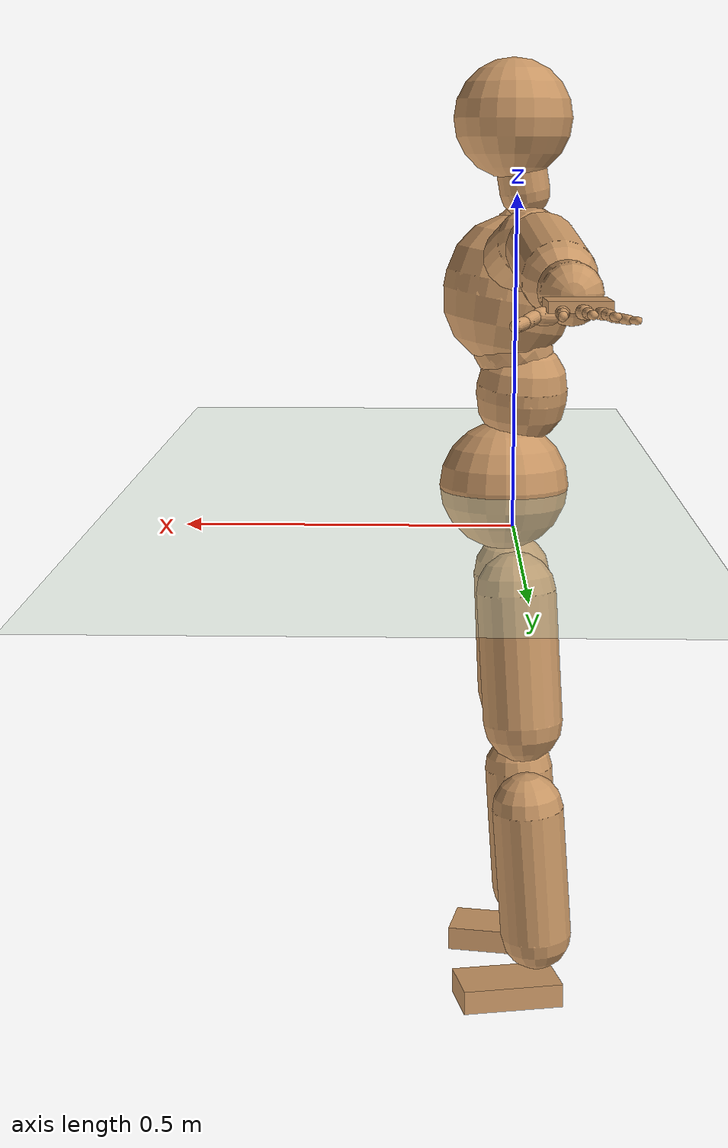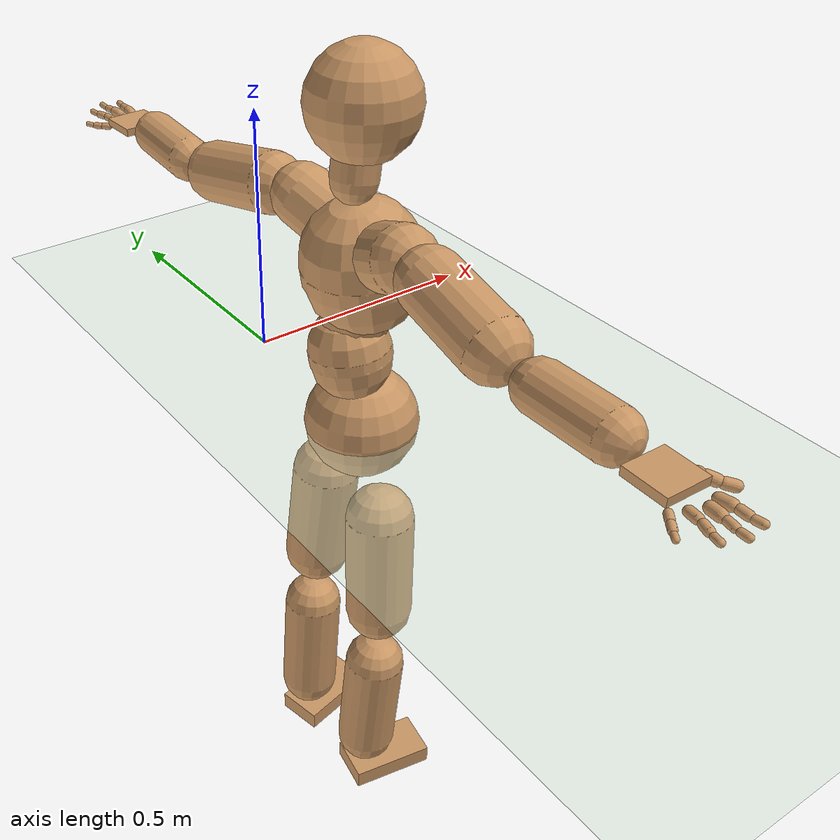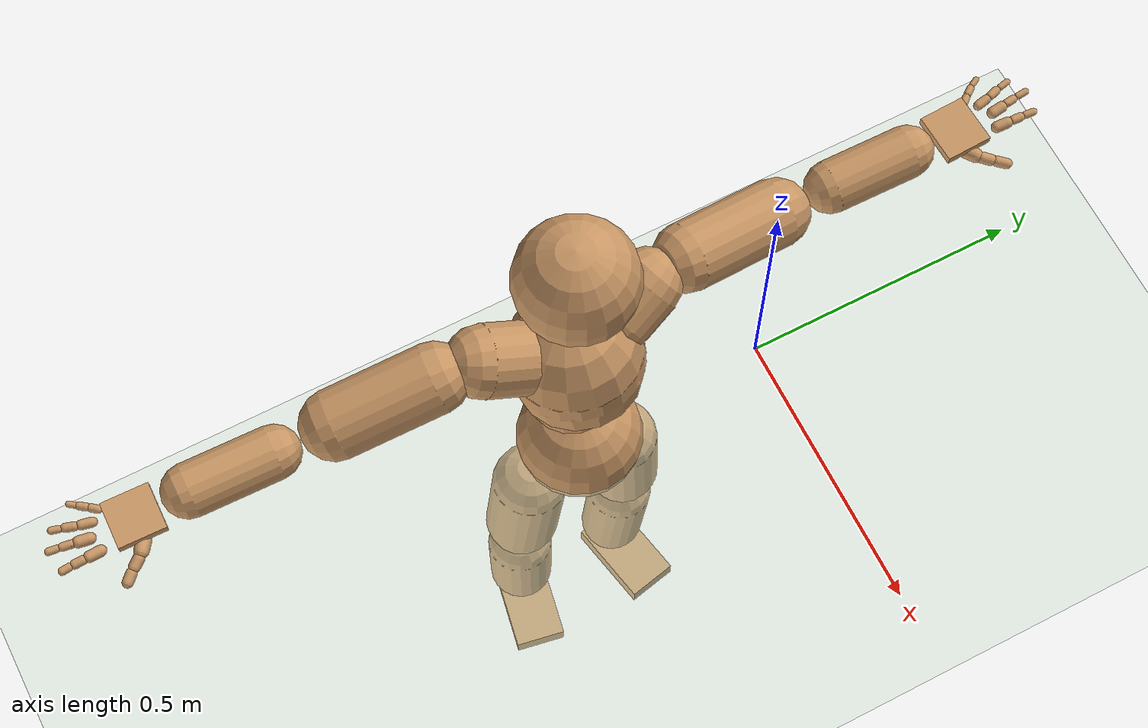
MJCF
<mujoco model="humanoid">
  <compiler coordinate="local" angle="radian"/>
  <default>
    <joint damping="0.0" armature="0.01" stiffness="0.0" limited="true"/>
    <geom conaffinity="1" condim="3" contype="7" margin="0.001" rgba="0.8 0.6 .4 1"/>
  </default>
  <asset>
    <texture type="skybox" builtin="gradient" rgb1=".4 .5 .6" rgb2="0 0 0" width="100" height="100"/>
    <texture builtin="flat" height="1278" mark="cross" markrgb="1 1 1" name="texgeom" random="0.01" rgb1="0.8 0.6 0.4" rgb2="0.8 0.6 0.4" type="cube" width="127"/>
    <texture builtin="checker" height="100" name="texplane" rgb1="0 0 0" rgb2="0.8 0.8 0.8" type="2d" width="100"/>
    <material name="MatPlane" reflectance="0.5" shininess="1" specular="1" texrepeat="60 60" texture="texplane"/>
    <material name="geom" texture="texgeom" texuniform="true"/>
  </asset>
  <worldbody>
    <light cutoff="100" diffuse="1 1 1" dir="-0 0 -1.3" directional="true" exponent="1" pos="0 0 1.3" specular=".1 .1 .1"/>
    <geom conaffinity="1" condim="3" name="floor" pos="0 0 0" rgba="0.8 0.9 0.8 1" size="100 100 .2" type="plane" material="MatPlane"/>
    <body name="Pelvis" pos="0.0008 -0.3431 0.0042">
      <freejoint name="Pelvis"/>
      <geom type="sphere" contype="1" conaffinity="1" density="500" size="0.1096" pos="0.0000 0.0000 0.0000" name="Pelvis"/>
      <body name="L_Hip" pos="-0.0148 0.0846 -0.091">
        <joint name="L_Hip_x" type="hinge" pos="0 0 0" axis="1 0 0" stiffness="800" damping="80" armature="0.02" range="-180.0000 180.0000"/>
        <joint name="L_Hip_y" type="hinge" pos="0 0 0" axis="0 1 0" stiffness="800" damping="80" armature="0.02" range="-180.0000 180.0000"/>
        <joint name="L_Hip_z" type="hinge" pos="0 0 0" axis="0 0 1" stiffness="800" damping="80" armature="0.02" range="-180.0000 180.0000"/>
        <geom type="capsule" contype="1" conaffinity="1" density="500" fromto="-0.0047 0.0051 -0.0747 -0.0189 0.0205 -0.2987" size="0.0671" name="L_Hip"/>
        <body name="L_Knee" pos="-0.0236 0.0257 -0.3734">
          <joint name="L_Knee_x" type="hinge" pos="0 0 0" axis="1 0 0" stiffness="800" damping="80" armature="0.02" range="-180.0000 180.0000"/>
          <joint name="L_Knee_y" type="hinge" pos="0 0 0" axis="0 1 0" stiffness="800" damping="80" armature="0.02" range="-180.0000 180.0000"/>
          <joint name="L_Knee_z" type="hinge" pos="0 0 0" axis="0 0 1" stiffness="800" damping="80" armature="0.02" range="-180.0000 180.0000"/>
          <geom type="capsule" contype="1" conaffinity="1" density="500" fromto="-0.0060 -0.0021 -0.0771 -0.0239 -0.0085 -0.3083" size="0.0609" name="L_Knee"/>
          <body name="L_Ankle" pos="-0.0299 -0.0107 -0.3854">
            <joint name="L_Ankle_x" type="hinge" pos="0 0 0" axis="1 0 0" stiffness="800" damping="80" armature="0.02" range="-180.0000 180.0000"/>
            <joint name="L_Ankle_y" type="hinge" pos="0 0 0" axis="0 1 0" stiffness="800" damping="80" armature="0.02" range="-180.0000 180.0000"/>
            <joint name="L_Ankle_z" type="hinge" pos="0 0 0" axis="0 0 1" stiffness="800" damping="80" armature="0.02" range="-180.0000 180.0000"/>
            <geom type="box" contype="1" conaffinity="1" density="500" pos="0.0549 0.0115 -0.0207" size="0.0871 0.0489 0.0206" quat="0.9947 0.0000 0.0000 0.1032" name="L_Ankle"/>
            <body name="L_Toe" pos="0.1098 0.023 -0.0413">
              <joint name="L_Toe_x" type="hinge" pos="0 0 0" axis="1 0 0" stiffness="500" damping="50" armature="0.02" range="-180.0000 180.0000"/>
              <joint name="L_Toe_y" type="hinge" pos="0 0 0" axis="0 1 0" stiffness="500" damping="50" armature="0.02" range="-180.0000 180.0000"/>
              <joint name="L_Toe_z" type="hinge" pos="0 0 0" axis="0 0 1" stiffness="500" damping="50" armature="0.02" range="-180.0000 180.0000"/>
              <geom type="box" contype="1" conaffinity="1" density="500" pos="0.0000 0.0000 0.0209" size="0.0009 0.0024 0.001" quat="0.9939 0.0000 0.0000 0.1099" name="L_Toe"/>
            </body>
          </body>
        </body>
      </body>
      <body name="R_Hip" pos="-0.0157 -0.0842 -0.0974">
        <joint name="R_Hip_x" type="hinge" pos="0 0 0" axis="1 0 0" stiffness="800" damping="80" armature="0.02" range="-180.0000 180.0000"/>
        <joint name="R_Hip_y" type="hinge" pos="0 0 0" axis="0 1 0" stiffness="800" damping="80" armature="0.02" range="-180.0000 180.0000"/>
        <joint name="R_Hip_z" type="hinge" pos="0 0 0" axis="0 0 1" stiffness="800" damping="80" armature="0.02" range="-180.0000 180.0000"/>
        <geom type="capsule" contype="1" conaffinity="1" density="500" fromto="-0.0035 -0.0060 -0.0738 -0.0140 -0.0241 -0.2954" size="0.0669" name="R_Hip"/>
        <body name="R_Knee" pos="-0.0175 -0.0301 -0.3692">
          <joint name="R_Knee_x" type="hinge" pos="0 0 0" axis="1 0 0" stiffness="800" damping="80" armature="0.02" range="-180.0000 180.0000"/>
          <joint name="R_Knee_y" type="hinge" pos="0 0 0" axis="0 1 0" stiffness="800" damping="80" armature="0.02" range="-180.0000 180.0000"/>
          <joint name="R_Knee_z" type="hinge" pos="0 0 0" axis="0 0 1" stiffness="800" damping="80" armature="0.02" range="-180.0000 180.0000"/>
          <geom type="capsule" contype="1" conaffinity="1" density="500" fromto="-0.0053 0.0012 -0.0753 -0.0212 0.0047 -0.3012" size="0.0609" name="R_Knee"/>
          <body name="R_Ankle" pos="-0.0265 0.0059 -0.3765">
            <joint name="R_Ankle_x" type="hinge" pos="0 0 0" axis="1 0 0" stiffness="800" damping="80" armature="0.02" range="-180.0000 180.0000"/>
            <joint name="R_Ankle_y" type="hinge" pos="0 0 0" axis="0 1 0" stiffness="800" damping="80" armature="0.02" range="-180.0000 180.0000"/>
            <joint name="R_Ankle_z" type="hinge" pos="0 0 0" axis="0 0 1" stiffness="800" damping="80" armature="0.02" range="-180.0000 180.0000"/>
            <geom type="box" contype="1" conaffinity="1" density="500" pos="0.0518 -0.0094 -0.0223" size="0.0871 0.0489 0.0206" quat="0.9960 0.0000 0.0000 -0.0895" name="R_Ankle"/>
            <body name="R_Toe" pos="0.1036 -0.0188 -0.0446">
              <joint name="R_Toe_x" type="hinge" pos="0 0 0" axis="1 0 0" stiffness="500" damping="50" armature="0.02" range="-180.0000 180.0000"/>
              <joint name="R_Toe_y" type="hinge" pos="0 0 0" axis="0 1 0" stiffness="500" damping="50" armature="0.02" range="-180.0000 180.0000"/>
              <joint name="R_Toe_z" type="hinge" pos="0 0 0" axis="0 0 1" stiffness="500" damping="50" armature="0.02" range="-180.0000 180.0000"/>
              <geom type="box" contype="1" conaffinity="1" density="500" pos="0.0000 0.0000 0.0225" size="0.0009 0.0024 0.001" quat="0.9969 0.0000 0.0000 -0.0787" name="R_Toe"/>
            </body>
          </body>
        </body>
      </body>
      <body name="Torso" pos="-0.0245 -0.0064 0.1062">
        <joint name="Torso_x" type="hinge" pos="0 0 0" axis="1 0 0" stiffness="1000" damping="100" armature="0.02" range="-180.0000 180.0000"/>
        <joint name="Torso_y" type="hinge" pos="0 0 0" axis="0 1 0" stiffness="1000" damping="100" armature="0.02" range="-180.0000 180.0000"/>
        <joint name="Torso_z" type="hinge" pos="0 0 0" axis="0 0 1" stiffness="1000" damping="100" armature="0.02" range="-180.0000 180.0000"/>
        <geom type="capsule" contype="1" conaffinity="1" density="500" fromto="-0.0043 0.0083 0.0640 -0.0029 0.0056 0.0427" size="0.0769" name="Torso"/>
        <body name="Spine" pos="-0.0072 0.0139 0.1067">
          <joint name="Spine_x" type="hinge" pos="0 0 0" axis="1 0 0" stiffness="1000" damping="100" armature="0.02" range="-180.0000 180.0000"/>
          <joint name="Spine_y" type="hinge" pos="0 0 0" axis="0 1 0" stiffness="1000" damping="100" armature="0.02" range="-180.0000 180.0000"/>
          <joint name="Spine_z" type="hinge" pos="0 0 0" axis="0 0 1" stiffness="1000" damping="100" armature="0.02" range="-180.0000 180.0000"/>
          <geom type="capsule" contype="1" conaffinity="1" density="500" fromto="0.0243 -0.0048 0.0265 0.0162 -0.0032 0.0177" size="0.0642" name="Spine"/>
          <body name="Chest" pos="0.0405 -0.008 0.0442">
            <joint name="Chest_x" type="hinge" pos="0 0 0" axis="1 0 0" stiffness="1000" damping="100" armature="0.02" range="-180.0000 180.0000"/>
            <joint name="Chest_y" type="hinge" pos="0 0 0" axis="0 1 0" stiffness="1000" damping="100" armature="0.02" range="-180.0000 180.0000"/>
            <joint name="Chest_z" type="hinge" pos="0 0 0" axis="0 0 1" stiffness="1000" damping="100" armature="0.02" range="-180.0000 180.0000"/>
            <geom type="capsule" contype="1" conaffinity="1" density="500" fromto="-0.0168 -0.0020 0.0879 -0.0112 -0.0013 0.0586" size="0.1102" name="Chest"/>
            <body name="Neck" pos="-0.0427 -0.0067 0.2043">
              <joint name="Neck_x" type="hinge" pos="0 0 0" axis="1 0 0" stiffness="500" damping="50" armature="0.02" range="-180.0000 180.0000"/>
              <joint name="Neck_y" type="hinge" pos="0 0 0" axis="0 1 0" stiffness="500" damping="50" armature="0.02" range="-180.0000 180.0000"/>
              <joint name="Neck_z" type="hinge" pos="0 0 0" axis="0 0 1" stiffness="500" damping="50" armature="0.02" range="-180.0000 180.0000"/>
              <geom type="capsule" contype="1" conaffinity="1" density="500" fromto="0.0054 0.0018 0.0298 0.0214 0.0073 0.1192" size="0.0418" name="Neck"/>
              <body name="Head" pos="0.0268 0.0091 0.1489">
                <joint name="Head_x" type="hinge" pos="0 0 0" axis="1 0 0" stiffness="500" damping="50" armature="0.02" range="-180.0000 180.0000"/>
                <joint name="Head_y" type="hinge" pos="0 0 0" axis="0 1 0" stiffness="500" damping="50" armature="0.02" range="-180.0000 180.0000"/>
                <joint name="Head_z" type="hinge" pos="0 0 0" axis="0 0 1" stiffness="500" damping="50" armature="0.02" range="-180.0000 180.0000"/>
                <geom type="sphere" contype="1" conaffinity="1" density="500" size="0.0981" pos="0.0000 0.0000 0.0000" name="Head"/>
              </body>
            </body>
            <body name="L_Thorax" pos="-0.0167 0.0572 0.1199">
              <joint name="L_Thorax_x" type="hinge" pos="0 0 0" axis="1 0 0" stiffness="500" damping="50" armature="0.02" range="-180.0000 180.0000"/>
              <joint name="L_Thorax_y" type="hinge" pos="0 0 0" axis="0 1 0" stiffness="500" damping="50" armature="0.02" range="-180.0000 180.0000"/>
              <joint name="L_Thorax_z" type="hinge" pos="0 0 0" axis="0 0 1" stiffness="500" damping="50" armature="0.02" range="-180.0000 180.0000"/>
              <geom type="capsule" contype="1" conaffinity="1" density="500" fromto="-0.0064 0.0199 0.0090 -0.0256 0.0797 0.0358" size="0.0582" name="L_Thorax"/>
              <body name="L_Shoulder" pos="-0.032 0.0997 0.0448">
                <joint name="L_Shoulder_x" type="hinge" pos="0 0 0" axis="1 0 0" stiffness="500" damping="50" armature="0.02" range="-180.0000 180.0000"/>
                <joint name="L_Shoulder_y" type="hinge" pos="0 0 0" axis="0 1 0" stiffness="500" damping="50" armature="0.02" range="-180.0000 180.0000"/>
                <joint name="L_Shoulder_z" type="hinge" pos="0 0 0" axis="0 0 1" stiffness="500" damping="50" armature="0.02" range="-180.0000 180.0000"/>
                <geom type="capsule" contype="1" conaffinity="1" density="500" fromto="-0.0057 0.0568 -0.0115 -0.0229 0.2273 -0.0459" size="0.0572" name="L_Shoulder"/>
                <body name="L_Elbow" pos="-0.0286 0.2841 -0.0574">
                  <joint name="L_Elbow_x" type="hinge" pos="0 0 0" axis="1 0 0" stiffness="500" damping="50" armature="0.02" range="-720.0000 720.0000"/>
                  <joint name="L_Elbow_y" type="hinge" pos="0 0 0" axis="0 1 0" stiffness="500" damping="50" armature="0.02" range="-720.0000 720.0000"/>
                  <joint name="L_Elbow_z" type="hinge" pos="0 0 0" axis="0 0 1" stiffness="500" damping="50" armature="0.02" range="-720.0000 720.0000"/>
                  <geom type="capsule" contype="1" conaffinity="1" density="500" fromto="0.0013 0.0465 0.0018 0.0051 0.1861 0.0071" size="0.0435" name="L_Elbow"/>
                  <body name="L_Wrist" pos="0.0063 0.2327 0.0089">
                    <joint name="L_Wrist_x" type="hinge" pos="0 0 0" axis="1 0 0" stiffness="300" damping="30" armature="0.02" range="-180.0000 180.0000"/>
                    <joint name="L_Wrist_y" type="hinge" pos="0 0 0" axis="0 1 0" stiffness="300" damping="30" armature="0.02" range="-180.0000 180.0000"/>
                    <joint name="L_Wrist_z" type="hinge" pos="0 0 0" axis="0 0 1" stiffness="300" damping="30" armature="0.02" range="-180.0000 180.0000"/>
                    <geom type="box" contype="1" conaffinity="1" density="500" pos="-0.0019 0.0442 -0.0086" size="0.0394 0.0424 0.0076" quat="0.7225 0.0000 0.0000 -0.6914" name="L_Wrist"/>
                    <body name="L_Index1" pos="0.0212 0.1037 -0.0148">
                      <joint name="L_Index1_x" type="hinge" pos="0 0 0" axis="1 0 0" stiffness="100" damping="10" armature="0.02" range="-180.0000 180.0000"/>
                      <joint name="L_Index1_y" type="hinge" pos="0 0 0" axis="0 1 0" stiffness="100" damping="10" armature="0.02" range="-180.0000 180.0000"/>
                      <joint name="L_Index1_z" type="hinge" pos="0 0 0" axis="0 0 1" stiffness="100" damping="10" armature="0.02" range="-180.0000 180.0000"/>
                      <geom type="capsule" contype="1" conaffinity="1" density="500" fromto="0.0005 0.0063 0.0006 0.0021 0.0252 0.0025" size="0.0093" name="L_Index1"/>
                      <body name="L_Index2" pos="0.0026 0.0315 0.0031">
                        <joint name="L_Index2_x" type="hinge" pos="0 0 0" axis="1 0 0" stiffness="100" damping="10" armature="0.02" range="-180.0000 180.0000"/>
                        <joint name="L_Index2_y" type="hinge" pos="0 0 0" axis="0 1 0" stiffness="100" damping="10" armature="0.02" range="-180.0000 180.0000"/>
                        <joint name="L_Index2_z" type="hinge" pos="0 0 0" axis="0 0 1" stiffness="100" damping="10" armature="0.02" range="-180.0000 180.0000"/>
                        <geom type="capsule" contype="1" conaffinity="1" density="500" fromto="0.0000 0.0044 -0.0003 0.0002 0.0178 -0.0010" size="0.0076" name="L_Index2"/>
                        <body name="L_Index3" pos="0.0002 0.0222 -0.0013">
                          <joint name="L_Index3_x" type="hinge" pos="0 0 0" axis="1 0 0" stiffness="100" damping="10" armature="0.02" range="-180.0000 180.0000"/>
                          <joint name="L_Index3_y" type="hinge" pos="0 0 0" axis="0 1 0" stiffness="100" damping="10" armature="0.02" range="-180.0000 180.0000"/>
                          <joint name="L_Index3_z" type="hinge" pos="0 0 0" axis="0 0 1" stiffness="100" damping="10" armature="0.02" range="-180.0000 180.0000"/>
                          <geom type="capsule" contype="1" conaffinity="1" density="500" fromto="0.0004 0.0048 0.0001 0.0018 0.0194 0.0006" size="0.0063" name="L_Index3"/>
                        </body>
                      </body>
                    </body>
                    <body name="L_Middle1" pos="-0.0021 0.1108 -0.0122">
                      <joint name="L_Middle1_x" type="hinge" pos="0 0 0" axis="1 0 0" stiffness="100" damping="10" armature="0.02" range="-180.0000 180.0000"/>
                      <joint name="L_Middle1_y" type="hinge" pos="0 0 0" axis="0 1 0" stiffness="100" damping="10" armature="0.02" range="-180.0000 180.0000"/>
                      <joint name="L_Middle1_z" type="hinge" pos="0 0 0" axis="0 0 1" stiffness="100" damping="10" armature="0.02" range="-180.0000 180.0000"/>
                      <geom type="capsule" contype="1" conaffinity="1" density="500" fromto="-0.0008 0.0060 0.0003 -0.0031 0.0238 0.0013" size="0.0095" name="L_Middle1"/>
                      <body name="L_Middle2" pos="-0.0039 0.0298 0.0017">
                        <joint name="L_Middle2_x" type="hinge" pos="0 0 0" axis="1 0 0" stiffness="100" damping="10" armature="0.02" range="-180.0000 180.0000"/>
                        <joint name="L_Middle2_y" type="hinge" pos="0 0 0" axis="0 1 0" stiffness="100" damping="10" armature="0.02" range="-180.0000 180.0000"/>
                        <joint name="L_Middle2_z" type="hinge" pos="0 0 0" axis="0 0 1" stiffness="100" damping="10" armature="0.02" range="-180.0000 180.0000"/>
                        <geom type="capsule" contype="1" conaffinity="1" density="500" fromto="-0.0008 0.0046 -0.0001 -0.0030 0.0184 -0.0005" size="0.007" name="L_Middle2"/>
                        <body name="L_Middle3" pos="-0.0038 0.023 -0.0007">
                          <joint name="L_Middle3_x" type="hinge" pos="0 0 0" axis="1 0 0" stiffness="100" damping="10" armature="0.02" range="-180.0000 180.0000"/>
                          <joint name="L_Middle3_y" type="hinge" pos="0 0 0" axis="0 1 0" stiffness="100" damping="10" armature="0.02" range="-180.0000 180.0000"/>
                          <joint name="L_Middle3_z" type="hinge" pos="0 0 0" axis="0 0 1" stiffness="100" damping="10" armature="0.02" range="-180.0000 180.0000"/>
                          <geom type="capsule" contype="1" conaffinity="1" density="500" fromto="-0.0004 0.0050 0.0003 -0.0014 0.0200 0.0011" size="0.0059" name="L_Middle3"/>
                        </body>
                      </body>
                    </body>
                    <body name="L_Pinky1" pos="-0.0411 0.0854 -0.0207">
                      <joint name="L_Pinky1_x" type="hinge" pos="0 0 0" axis="1 0 0" stiffness="100" damping="10" armature="0.02" range="-180.0000 180.0000"/>
                      <joint name="L_Pinky1_y" type="hinge" pos="0 0 0" axis="0 1 0" stiffness="100" damping="10" armature="0.02" range="-180.0000 180.0000"/>
                      <joint name="L_Pinky1_z" type="hinge" pos="0 0 0" axis="0 0 1" stiffness="100" damping="10" armature="0.02" range="-180.0000 180.0000"/>
                      <geom type="capsule" contype="1" conaffinity="1" density="500" fromto="-0.0024 0.0030 -0.0001 -0.0096 0.0118 -0.0005" size="0.0067" name="L_Pinky1"/>
                      <body name="L_Pinky2" pos="-0.012 0.0148 -0.0006">
                        <joint name="L_Pinky2_x" type="hinge" pos="0 0 0" axis="1 0 0" stiffness="100" damping="10" armature="0.02" range="-180.0000 180.0000"/>
                        <joint name="L_Pinky2_y" type="hinge" pos="0 0 0" axis="0 1 0" stiffness="100" damping="10" armature="0.02" range="-180.0000 180.0000"/>
                        <joint name="L_Pinky2_z" type="hinge" pos="0 0 0" axis="0 0 1" stiffness="100" damping="10" armature="0.02" range="-180.0000 180.0000"/>
                        <geom type="capsule" contype="1" conaffinity="1" density="500" fromto="-0.0023 0.0030 -0.0002 -0.0092 0.0120 -0.0008" size="0.0065" name="L_Pinky2"/>
                        <body name="L_Pinky3" pos="-0.0115 0.015 -0.0011">
                          <joint name="L_Pinky3_x" type="hinge" pos="0 0 0" axis="1 0 0" stiffness="100" damping="10" armature="0.02" range="-180.0000 180.0000"/>
                          <joint name="L_Pinky3_y" type="hinge" pos="0 0 0" axis="0 1 0" stiffness="100" damping="10" armature="0.02" range="-180.0000 180.0000"/>
                          <joint name="L_Pinky3_z" type="hinge" pos="0 0 0" axis="0 0 1" stiffness="100" damping="10" armature="0.02" range="-180.0000 180.0000"/>
                          <geom type="capsule" contype="1" conaffinity="1" density="500" fromto="-0.0019 0.0034 0.0002 -0.0076 0.0136 0.0008" size="0.0049" name="L_Pinky3"/>
                        </body>
                      </body>
                    </body>
                    <body name="L_Ring1" pos="-0.0253 0.0988 -0.0152">
                      <joint name="L_Ring1_x" type="hinge" pos="0 0 0" axis="1 0 0" stiffness="100" damping="10" armature="0.02" range="-180.0000 180.0000"/>
                      <joint name="L_Ring1_y" type="hinge" pos="0 0 0" axis="0 1 0" stiffness="100" damping="10" armature="0.02" range="-180.0000 180.0000"/>
                      <joint name="L_Ring1_z" type="hinge" pos="0 0 0" axis="0 0 1" stiffness="100" damping="10" armature="0.02" range="-180.0000 180.0000"/>
                      <geom type="capsule" contype="1" conaffinity="1" density="500" fromto="-0.0011 0.0055 0.0004 -0.0043 0.0219 0.0015" size="0.0081" name="L_Ring1"/>
                      <body name="L_Ring2" pos="-0.0054 0.0274 0.0019">
                        <joint name="L_Ring2_x" type="hinge" pos="0 0 0" axis="1 0 0" stiffness="100" damping="10" armature="0.02" range="-180.0000 180.0000"/>
                        <joint name="L_Ring2_y" type="hinge" pos="0 0 0" axis="0 1 0" stiffness="100" damping="10" armature="0.02" range="-180.0000 180.0000"/>
                        <joint name="L_Ring2_z" type="hinge" pos="0 0 0" axis="0 0 1" stiffness="100" damping="10" armature="0.02" range="-180.0000 180.0000"/>
                        <geom type="capsule" contype="1" conaffinity="1" density="500" fromto="-0.0014 0.0045 -0.0002 -0.0057 0.0178 -0.0008" size="0.0074" name="L_Ring2"/>
                        <body name="L_Ring3" pos="-0.0071 0.0223 -0.0011">
                          <joint name="L_Ring3_x" type="hinge" pos="0 0 0" axis="1 0 0" stiffness="100" damping="10" armature="0.02" range="-180.0000 180.0000"/>
                          <joint name="L_Ring3_y" type="hinge" pos="0 0 0" axis="0 1 0" stiffness="100" damping="10" armature="0.02" range="-180.0000 180.0000"/>
                          <joint name="L_Ring3_z" type="hinge" pos="0 0 0" axis="0 0 1" stiffness="100" damping="10" armature="0.02" range="-180.0000 180.0000"/>
                          <geom type="capsule" contype="1" conaffinity="1" density="500" fromto="-0.0010 0.0049 0.0002 -0.0041 0.0194 0.0008" size="0.0056" name="L_Ring3"/>
                        </body>
                      </body>
                    </body>
                    <body name="L_Thumb1" pos="0.0279 0.0431 -0.0233">
                      <joint name="L_Thumb1_x" type="hinge" pos="0 0 0" axis="1 0 0" stiffness="100" damping="10" armature="0.02" range="-180.0000 180.0000"/>
                      <joint name="L_Thumb1_y" type="hinge" pos="0 0 0" axis="0 1 0" stiffness="100" damping="10" armature="0.02" range="-180.0000 180.0000"/>
                      <joint name="L_Thumb1_z" type="hinge" pos="0 0 0" axis="0 0 1" stiffness="100" damping="10" armature="0.02" range="-180.0000 180.0000"/>
                      <geom type="capsule" contype="1" conaffinity="1" density="500" fromto="0.0048 0.0034 0.0002 0.0192 0.0136 0.0007" size="0.012" name="L_Thumb1"/>
                      <body name="L_Thumb2" pos="0.024 0.017 0.0009">
                        <joint name="L_Thumb2_x" type="hinge" pos="0 0 0" axis="1 0 0" stiffness="100" damping="10" armature="0.02" range="-180.0000 180.0000"/>
                        <joint name="L_Thumb2_y" type="hinge" pos="0 0 0" axis="0 1 0" stiffness="100" damping="10" armature="0.02" range="-180.0000 180.0000"/>
                        <joint name="L_Thumb2_z" type="hinge" pos="0 0 0" axis="0 0 1" stiffness="100" damping="10" armature="0.02" range="-180.0000 180.0000"/>
                        <geom type="capsule" contype="1" conaffinity="1" density="500" fromto="0.0029 0.0040 -0.0012 0.0116 0.0160 -0.0049" size="0.0095" name="L_Thumb2"/>
                        <body name="L_Thumb3" pos="0.0144 0.02 -0.0061">
                          <joint name="L_Thumb3_x" type="hinge" pos="0 0 0" axis="1 0 0" stiffness="100" damping="10" armature="0.02" range="-180.0000 180.0000"/>
                          <joint name="L_Thumb3_y" type="hinge" pos="0 0 0" axis="0 1 0" stiffness="100" damping="10" armature="0.02" range="-180.0000 180.0000"/>
                          <joint name="L_Thumb3_z" type="hinge" pos="0 0 0" axis="0 0 1" stiffness="100" damping="10" armature="0.02" range="-180.0000 180.0000"/>
                          <geom type="capsule" contype="1" conaffinity="1" density="500" fromto="0.0033 0.0044 -0.0008 0.0132 0.0176 -0.0033" size="0.0089" name="L_Thumb3"/>
                        </body>
                      </body>
                    </body>
                  </body>
                </body>
              </body>
            </body>
            <body name="R_Thorax" pos="-0.0244 -0.0605 0.1153">
              <joint name="R_Thorax_x" type="hinge" pos="0 0 0" axis="1 0 0" stiffness="500" damping="50" armature="0.02" range="-180.0000 180.0000"/>
              <joint name="R_Thorax_y" type="hinge" pos="0 0 0" axis="0 1 0" stiffness="500" damping="50" armature="0.02" range="-180.0000 180.0000"/>
              <joint name="R_Thorax_z" type="hinge" pos="0 0 0" axis="0 0 1" stiffness="500" damping="50" armature="0.02" range="-180.0000 180.0000"/>
              <geom type="capsule" contype="1" conaffinity="1" density="500" fromto="-0.0047 -0.0217 0.0093 -0.0186 -0.0869 0.0370" size="0.0593" name="R_Thorax"/>
              <body name="R_Shoulder" pos="-0.0233 -0.1086 0.0463">
                <joint name="R_Shoulder_x" type="hinge" pos="0 0 0" axis="1 0 0" stiffness="500" damping="50" armature="0.02" range="-180.0000 180.0000"/>
                <joint name="R_Shoulder_y" type="hinge" pos="0 0 0" axis="0 1 0" stiffness="500" damping="50" armature="0.02" range="-180.0000 180.0000"/>
                <joint name="R_Shoulder_z" type="hinge" pos="0 0 0" axis="0 0 1" stiffness="500" damping="50" armature="0.02" range="-180.0000 180.0000"/>
                <geom type="capsule" contype="1" conaffinity="1" density="500" fromto="-0.0043 -0.0547 -0.0102 -0.0173 -0.2187 -0.0407" size="0.0576" name="R_Shoulder"/>
                <body name="R_Elbow" pos="-0.0216 -0.2734 -0.0509">
                  <joint name="R_Elbow_x" type="hinge" pos="0 0 0" axis="1 0 0" stiffness="500" damping="50" armature="0.02" range="-720.0000 720.0000"/>
                  <joint name="R_Elbow_y" type="hinge" pos="0 0 0" axis="0 1 0" stiffness="500" damping="50" armature="0.02" range="-720.0000 720.0000"/>
                  <joint name="R_Elbow_z" type="hinge" pos="0 0 0" axis="0 0 1" stiffness="500" damping="50" armature="0.02" range="-720.0000 720.0000"/>
                  <geom type="capsule" contype="1" conaffinity="1" density="500" fromto="-0.0007 -0.0466 0.0009 -0.0027 -0.1864 0.0037" size="0.0437" name="R_Elbow"/>
                  <body name="R_Wrist" pos="-0.0034 -0.233 0.0046">
                    <joint name="R_Wrist_x" type="hinge" pos="0 0 0" axis="1 0 0" stiffness="300" damping="30" armature="0.02" range="-180.0000 180.0000"/>
                    <joint name="R_Wrist_y" type="hinge" pos="0 0 0" axis="0 1 0" stiffness="300" damping="30" armature="0.02" range="-180.0000 180.0000"/>
                    <joint name="R_Wrist_z" type="hinge" pos="0 0 0" axis="0 0 1" stiffness="300" damping="30" armature="0.02" range="-180.0000 180.0000"/>
                    <geom type="box" contype="1" conaffinity="1" density="500" pos="-0.0011 -0.0435 -0.0081" size="0.0394 0.0396 0.0079" quat="0.7157 0.0000 0.0000 0.6984" name="R_Wrist"/>
                    <body name="R_Index1" pos="0.0229 -0.1024 -0.0139">
                      <joint name="R_Index1_x" type="hinge" pos="0 0 0" axis="1 0 0" stiffness="100" damping="10" armature="0.02" range="-180.0000 180.0000"/>
                      <joint name="R_Index1_y" type="hinge" pos="0 0 0" axis="0 1 0" stiffness="100" damping="10" armature="0.02" range="-180.0000 180.0000"/>
                      <joint name="R_Index1_z" type="hinge" pos="0 0 0" axis="0 0 1" stiffness="100" damping="10" armature="0.02" range="-180.0000 180.0000"/>
                      <geom type="capsule" contype="1" conaffinity="1" density="500" fromto="0.0005 -0.0063 0.0006 0.0021 -0.0252 0.0025" size="0.0093" name="R_Index1"/>
                      <body name="R_Index2" pos="0.0026 -0.0315 0.0031">
                        <joint name="R_Index2_x" type="hinge" pos="0 0 0" axis="1 0 0" stiffness="100" damping="10" armature="0.02" range="-180.0000 180.0000"/>
                        <joint name="R_Index2_y" type="hinge" pos="0 0 0" axis="0 1 0" stiffness="100" damping="10" armature="0.02" range="-180.0000 180.0000"/>
                        <joint name="R_Index2_z" type="hinge" pos="0 0 0" axis="0 0 1" stiffness="100" damping="10" armature="0.02" range="-180.0000 180.0000"/>
                        <geom type="capsule" contype="1" conaffinity="1" density="500" fromto="0.0000 -0.0044 -0.0003 0.0002 -0.0178 -0.0010" size="0.0076" name="R_Index2"/>
                        <body name="R_Index3" pos="0.0002 -0.0222 -0.0013">
                          <joint name="R_Index3_x" type="hinge" pos="0 0 0" axis="1 0 0" stiffness="100" damping="10" armature="0.02" range="-180.0000 180.0000"/>
                          <joint name="R_Index3_y" type="hinge" pos="0 0 0" axis="0 1 0" stiffness="100" damping="10" armature="0.02" range="-180.0000 180.0000"/>
                          <joint name="R_Index3_z" type="hinge" pos="0 0 0" axis="0 0 1" stiffness="100" damping="10" armature="0.02" range="-180.0000 180.0000"/>
                          <geom type="capsule" contype="1" conaffinity="1" density="500" fromto="0.0004 -0.0040 0.0001 0.0018 -0.0162 0.0006" size="0.0066" name="R_Index3"/>
                        </body>
                      </body>
                    </body>
                    <body name="R_Middle1" pos="-0.0004 -0.1095 -0.0112">
                      <joint name="R_Middle1_x" type="hinge" pos="0 0 0" axis="1 0 0" stiffness="100" damping="10" armature="0.02" range="-180.0000 180.0000"/>
                      <joint name="R_Middle1_y" type="hinge" pos="0 0 0" axis="0 1 0" stiffness="100" damping="10" armature="0.02" range="-180.0000 180.0000"/>
                      <joint name="R_Middle1_z" type="hinge" pos="0 0 0" axis="0 0 1" stiffness="100" damping="10" armature="0.02" range="-180.0000 180.0000"/>
                      <geom type="capsule" contype="1" conaffinity="1" density="500" fromto="-0.0008 -0.0060 0.0003 -0.0031 -0.0238 0.0013" size="0.0095" name="R_Middle1"/>
                      <body name="R_Middle2" pos="-0.0039 -0.0298 0.0017">
                        <joint name="R_Middle2_x" type="hinge" pos="0 0 0" axis="1 0 0" stiffness="100" damping="10" armature="0.02" range="-180.0000 180.0000"/>
                        <joint name="R_Middle2_y" type="hinge" pos="0 0 0" axis="0 1 0" stiffness="100" damping="10" armature="0.02" range="-180.0000 180.0000"/>
                        <joint name="R_Middle2_z" type="hinge" pos="0 0 0" axis="0 0 1" stiffness="100" damping="10" armature="0.02" range="-180.0000 180.0000"/>
                        <geom type="capsule" contype="1" conaffinity="1" density="500" fromto="-0.0008 -0.0046 -0.0001 -0.0030 -0.0184 -0.0005" size="0.007" name="R_Middle2"/>
                        <body name="R_Middle3" pos="-0.0038 -0.023 -0.0007">
                          <joint name="R_Middle3_x" type="hinge" pos="0 0 0" axis="1 0 0" stiffness="100" damping="10" armature="0.02" range="-180.0000 180.0000"/>
                          <joint name="R_Middle3_y" type="hinge" pos="0 0 0" axis="0 1 0" stiffness="100" damping="10" armature="0.02" range="-180.0000 180.0000"/>
                          <joint name="R_Middle3_z" type="hinge" pos="0 0 0" axis="0 0 1" stiffness="100" damping="10" armature="0.02" range="-180.0000 180.0000"/>
                          <geom type="capsule" contype="1" conaffinity="1" density="500" fromto="-0.0004 -0.0042 0.0003 -0.0014 -0.0168 0.0011" size="0.0062" name="R_Middle3"/>
                        </body>
                      </body>
                    </body>
                    <body name="R_Pinky1" pos="-0.0393 -0.0841 -0.0197">
                      <joint name="R_Pinky1_x" type="hinge" pos="0 0 0" axis="1 0 0" stiffness="100" damping="10" armature="0.02" range="-180.0000 180.0000"/>
                      <joint name="R_Pinky1_y" type="hinge" pos="0 0 0" axis="0 1 0" stiffness="100" damping="10" armature="0.02" range="-180.0000 180.0000"/>
                      <joint name="R_Pinky1_z" type="hinge" pos="0 0 0" axis="0 0 1" stiffness="100" damping="10" armature="0.02" range="-180.0000 180.0000"/>
                      <geom type="capsule" contype="1" conaffinity="1" density="500" fromto="-0.0024 -0.0030 -0.0001 -0.0096 -0.0118 -0.0005" size="0.0067" name="R_Pinky1"/>
                      <body name="R_Pinky2" pos="-0.012 -0.0148 -0.0006">
                        <joint name="R_Pinky2_x" type="hinge" pos="0 0 0" axis="1 0 0" stiffness="100" damping="10" armature="0.02" range="-180.0000 180.0000"/>
                        <joint name="R_Pinky2_y" type="hinge" pos="0 0 0" axis="0 1 0" stiffness="100" damping="10" armature="0.02" range="-180.0000 180.0000"/>
                        <joint name="R_Pinky2_z" type="hinge" pos="0 0 0" axis="0 0 1" stiffness="100" damping="10" armature="0.02" range="-180.0000 180.0000"/>
                        <geom type="capsule" contype="1" conaffinity="1" density="500" fromto="-0.0023 -0.0030 -0.0002 -0.0092 -0.0120 -0.0008" size="0.0065" name="R_Pinky2"/>
                        <body name="R_Pinky3" pos="-0.0115 -0.015 -0.0011">
                          <joint name="R_Pinky3_x" type="hinge" pos="0 0 0" axis="1 0 0" stiffness="100" damping="10" armature="0.02" range="-180.0000 180.0000"/>
                          <joint name="R_Pinky3_y" type="hinge" pos="0 0 0" axis="0 1 0" stiffness="100" damping="10" armature="0.02" range="-180.0000 180.0000"/>
                          <joint name="R_Pinky3_z" type="hinge" pos="0 0 0" axis="0 0 1" stiffness="100" damping="10" armature="0.02" range="-180.0000 180.0000"/>
                          <geom type="capsule" contype="1" conaffinity="1" density="500" fromto="-0.0019 -0.0026 0.0002 -0.0076 -0.0104 0.0008" size="0.0051" name="R_Pinky3"/>
                        </body>
                      </body>
                    </body>
                    <body name="R_Ring1" pos="-0.0235 -0.0975 -0.0142">
                      <joint name="R_Ring1_x" type="hinge" pos="0 0 0" axis="1 0 0" stiffness="100" damping="10" armature="0.02" range="-180.0000 180.0000"/>
                      <joint name="R_Ring1_y" type="hinge" pos="0 0 0" axis="0 1 0" stiffness="100" damping="10" armature="0.02" range="-180.0000 180.0000"/>
                      <joint name="R_Ring1_z" type="hinge" pos="0 0 0" axis="0 0 1" stiffness="100" damping="10" armature="0.02" range="-180.0000 180.0000"/>
                      <geom type="capsule" contype="1" conaffinity="1" density="500" fromto="-0.0011 -0.0055 0.0004 -0.0043 -0.0219 0.0015" size="0.0081" name="R_Ring1"/>
                      <body name="R_Ring2" pos="-0.0054 -0.0274 0.0019">
                        <joint name="R_Ring2_x" type="hinge" pos="0 0 0" axis="1 0 0" stiffness="100" damping="10" armature="0.02" range="-180.0000 180.0000"/>
                        <joint name="R_Ring2_y" type="hinge" pos="0 0 0" axis="0 1 0" stiffness="100" damping="10" armature="0.02" range="-180.0000 180.0000"/>
                        <joint name="R_Ring2_z" type="hinge" pos="0 0 0" axis="0 0 1" stiffness="100" damping="10" armature="0.02" range="-180.0000 180.0000"/>
                        <geom type="capsule" contype="1" conaffinity="1" density="500" fromto="-0.0014 -0.0045 -0.0002 -0.0057 -0.0178 -0.0008" size="0.0074" name="R_Ring2"/>
                        <body name="R_Ring3" pos="-0.0071 -0.0223 -0.0011">
                          <joint name="R_Ring3_x" type="hinge" pos="0 0 0" axis="1 0 0" stiffness="100" damping="10" armature="0.02" range="-180.0000 180.0000"/>
                          <joint name="R_Ring3_y" type="hinge" pos="0 0 0" axis="0 1 0" stiffness="100" damping="10" armature="0.02" range="-180.0000 180.0000"/>
                          <joint name="R_Ring3_z" type="hinge" pos="0 0 0" axis="0 0 1" stiffness="100" damping="10" armature="0.02" range="-180.0000 180.0000"/>
                          <geom type="capsule" contype="1" conaffinity="1" density="500" fromto="-0.0010 -0.0041 0.0002 -0.0041 -0.0162 0.0008" size="0.0059" name="R_Ring3"/>
                        </body>
                      </body>
                    </body>
                    <body name="R_Thumb1" pos="0.0297 -0.0418 -0.0223">
                      <joint name="R_Thumb1_x" type="hinge" pos="0 0 0" axis="1 0 0" stiffness="100" damping="10" armature="0.02" range="-180.0000 180.0000"/>
                      <joint name="R_Thumb1_y" type="hinge" pos="0 0 0" axis="0 1 0" stiffness="100" damping="10" armature="0.02" range="-180.0000 180.0000"/>
                      <joint name="R_Thumb1_z" type="hinge" pos="0 0 0" axis="0 0 1" stiffness="100" damping="10" armature="0.02" range="-180.0000 180.0000"/>
                      <geom type="capsule" contype="1" conaffinity="1" density="500" fromto="0.0048 -0.0034 0.0002 0.0192 -0.0136 0.0007" size="0.012" name="R_Thumb1"/>
                      <body name="R_Thumb2" pos="0.024 -0.017 0.0009">
                        <joint name="R_Thumb2_x" type="hinge" pos="0 0 0" axis="1 0 0" stiffness="100" damping="10" armature="0.02" range="-180.0000 180.0000"/>
                        <joint name="R_Thumb2_y" type="hinge" pos="0 0 0" axis="0 1 0" stiffness="100" damping="10" armature="0.02" range="-180.0000 180.0000"/>
                        <joint name="R_Thumb2_z" type="hinge" pos="0 0 0" axis="0 0 1" stiffness="100" damping="10" armature="0.02" range="-180.0000 180.0000"/>
                        <geom type="capsule" contype="1" conaffinity="1" density="500" fromto="0.0029 -0.0040 -0.0012 0.0116 -0.0160 -0.0049" size="0.0095" name="R_Thumb2"/>
                        <body name="R_Thumb3" pos="0.0144 -0.02 -0.0061">
                          <joint name="R_Thumb3_x" type="hinge" pos="0 0 0" axis="1 0 0" stiffness="100" damping="10" armature="0.02" range="-180.0000 180.0000"/>
                          <joint name="R_Thumb3_y" type="hinge" pos="0 0 0" axis="0 1 0" stiffness="100" damping="10" armature="0.02" range="-180.0000 180.0000"/>
                          <joint name="R_Thumb3_z" type="hinge" pos="0 0 0" axis="0 0 1" stiffness="100" damping="10" armature="0.02" range="-180.0000 180.0000"/>
                          <geom type="capsule" contype="1" conaffinity="1" density="500" fromto="0.0033 -0.0036 -0.0008 0.0132 -0.0144 -0.0033" size="0.0091" name="R_Thumb3"/>
                        </body>
                      </body>
                    </body>
                  </body>
                </body>
              </body>
            </body>
          </body>
        </body>
      </body>
    </body>
  </worldbody>
  <actuator>
    <motor name="L_Hip_x" joint="L_Hip_x" gear="500"/>
    <motor name="L_Hip_y" joint="L_Hip_y" gear="500"/>
    <motor name="L_Hip_z" joint="L_Hip_z" gear="500"/>
    <motor name="L_Knee_x" joint="L_Knee_x" gear="500"/>
    <motor name="L_Knee_y" joint="L_Knee_y" gear="500"/>
    <motor name="L_Knee_z" joint="L_Knee_z" gear="500"/>
    <motor name="L_Ankle_x" joint="L_Ankle_x" gear="500"/>
    <motor name="L_Ankle_y" joint="L_Ankle_y" gear="500"/>
    <motor name="L_Ankle_z" joint="L_Ankle_z" gear="500"/>
    <motor name="L_Toe_x" joint="L_Toe_x" gear="500"/>
    <motor name="L_Toe_y" joint="L_Toe_y" gear="500"/>
    <motor name="L_Toe_z" joint="L_Toe_z" gear="500"/>
    <motor name="R_Hip_x" joint="R_Hip_x" gear="500"/>
    <motor name="R_Hip_y" joint="R_Hip_y" gear="500"/>
    <motor name="R_Hip_z" joint="R_Hip_z" gear="500"/>
    <motor name="R_Knee_x" joint="R_Knee_x" gear="500"/>
    <motor name="R_Knee_y" joint="R_Knee_y" gear="500"/>
    <motor name="R_Knee_z" joint="R_Knee_z" gear="500"/>
    <motor name="R_Ankle_x" joint="R_Ankle_x" gear="500"/>
    <motor name="R_Ankle_y" joint="R_Ankle_y" gear="500"/>
    <motor name="R_Ankle_z" joint="R_Ankle_z" gear="500"/>
    <motor name="R_Toe_x" joint="R_Toe_x" gear="500"/>
    <motor name="R_Toe_y" joint="R_Toe_y" gear="500"/>
    <motor name="R_Toe_z" joint="R_Toe_z" gear="500"/>
    <motor name="Torso_x" joint="Torso_x" gear="500"/>
    <motor name="Torso_y" joint="Torso_y" gear="500"/>
    <motor name="Torso_z" joint="Torso_z" gear="500"/>
    <motor name="Spine_x" joint="Spine_x" gear="500"/>
    <motor name="Spine_y" joint="Spine_y" gear="500"/>
    <motor name="Spine_z" joint="Spine_z" gear="500"/>
    <motor name="Chest_x" joint="Chest_x" gear="500"/>
    <motor name="Chest_y" joint="Chest_y" gear="500"/>
    <motor name="Chest_z" joint="Chest_z" gear="500"/>
    <motor name="Neck_x" joint="Neck_x" gear="500"/>
    <motor name="Neck_y" joint="Neck_y" gear="500"/>
    <motor name="Neck_z" joint="Neck_z" gear="500"/>
    <motor name="Head_x" joint="Head_x" gear="500"/>
    <motor name="Head_y" joint="Head_y" gear="500"/>
    <motor name="Head_z" joint="Head_z" gear="500"/>
    <motor name="L_Thorax_x" joint="L_Thorax_x" gear="500"/>
    <motor name="L_Thorax_y" joint="L_Thorax_y" gear="500"/>
    <motor name="L_Thorax_z" joint="L_Thorax_z" gear="500"/>
    <motor name="L_Shoulder_x" joint="L_Shoulder_x" gear="500"/>
    <motor name="L_Shoulder_y" joint="L_Shoulder_y" gear="500"/>
    <motor name="L_Shoulder_z" joint="L_Shoulder_z" gear="500"/>
    <motor name="L_Elbow_x" joint="L_Elbow_x" gear="500"/>
    <motor name="L_Elbow_y" joint="L_Elbow_y" gear="500"/>
    <motor name="L_Elbow_z" joint="L_Elbow_z" gear="500"/>
    <motor name="L_Wrist_x" joint="L_Wrist_x" gear="500"/>
    <motor name="L_Wrist_y" joint="L_Wrist_y" gear="500"/>
    <motor name="L_Wrist_z" joint="L_Wrist_z" gear="500"/>
    <motor name="L_Index1_x" joint="L_Index1_x" gear="500"/>
    <motor name="L_Index1_y" joint="L_Index1_y" gear="500"/>
    <motor name="L_Index1_z" joint="L_Index1_z" gear="500"/>
    <motor name="L_Index2_x" joint="L_Index2_x" gear="500"/>
    <motor name="L_Index2_y" joint="L_Index2_y" gear="500"/>
    <motor name="L_Index2_z" joint="L_Index2_z" gear="500"/>
    <motor name="L_Index3_x" joint="L_Index3_x" gear="500"/>
    <motor name="L_Index3_y" joint="L_Index3_y" gear="500"/>
    <motor name="L_Index3_z" joint="L_Index3_z" gear="500"/>
    <motor name="L_Middle1_x" joint="L_Middle1_x" gear="500"/>
    <motor name="L_Middle1_y" joint="L_Middle1_y" gear="500"/>
    <motor name="L_Middle1_z" joint="L_Middle1_z" gear="500"/>
    <motor name="L_Middle2_x" joint="L_Middle2_x" gear="500"/>
    <motor name="L_Middle2_y" joint="L_Middle2_y" gear="500"/>
    <motor name="L_Middle2_z" joint="L_Middle2_z" gear="500"/>
    <motor name="L_Middle3_x" joint="L_Middle3_x" gear="500"/>
    <motor name="L_Middle3_y" joint="L_Middle3_y" gear="500"/>
    <motor name="L_Middle3_z" joint="L_Middle3_z" gear="500"/>
    <motor name="L_Pinky1_x" joint="L_Pinky1_x" gear="500"/>
    <motor name="L_Pinky1_y" joint="L_Pinky1_y" gear="500"/>
    <motor name="L_Pinky1_z" joint="L_Pinky1_z" gear="500"/>
    <motor name="L_Pinky2_x" joint="L_Pinky2_x" gear="500"/>
    <motor name="L_Pinky2_y" joint="L_Pinky2_y" gear="500"/>
    <motor name="L_Pinky2_z" joint="L_Pinky2_z" gear="500"/>
    <motor name="L_Pinky3_x" joint="L_Pinky3_x" gear="500"/>
    <motor name="L_Pinky3_y" joint="L_Pinky3_y" gear="500"/>
    <motor name="L_Pinky3_z" joint="L_Pinky3_z" gear="500"/>
    <motor name="L_Ring1_x" joint="L_Ring1_x" gear="500"/>
    <motor name="L_Ring1_y" joint="L_Ring1_y" gear="500"/>
    <motor name="L_Ring1_z" joint="L_Ring1_z" gear="500"/>
    <motor name="L_Ring2_x" joint="L_Ring2_x" gear="500"/>
    <motor name="L_Ring2_y" joint="L_Ring2_y" gear="500"/>
    <motor name="L_Ring2_z" joint="L_Ring2_z" gear="500"/>
    <motor name="L_Ring3_x" joint="L_Ring3_x" gear="500"/>
    <motor name="L_Ring3_y" joint="L_Ring3_y" gear="500"/>
    <motor name="L_Ring3_z" joint="L_Ring3_z" gear="500"/>
    <motor name="L_Thumb1_x" joint="L_Thumb1_x" gear="500"/>
    <motor name="L_Thumb1_y" joint="L_Thumb1_y" gear="500"/>
    <motor name="L_Thumb1_z" joint="L_Thumb1_z" gear="500"/>
    <motor name="L_Thumb2_x" joint="L_Thumb2_x" gear="500"/>
    <motor name="L_Thumb2_y" joint="L_Thumb2_y" gear="500"/>
    <motor name="L_Thumb2_z" joint="L_Thumb2_z" gear="500"/>
    <motor name="L_Thumb3_x" joint="L_Thumb3_x" gear="500"/>
    <motor name="L_Thumb3_y" joint="L_Thumb3_y" gear="500"/>
    <motor name="L_Thumb3_z" joint="L_Thumb3_z" gear="500"/>
    <motor name="R_Thorax_x" joint="R_Thorax_x" gear="500"/>
    <motor name="R_Thorax_y" joint="R_Thorax_y" gear="500"/>
    <motor name="R_Thorax_z" joint="R_Thorax_z" gear="500"/>
    <motor name="R_Shoulder_x" joint="R_Shoulder_x" gear="500"/>
    <motor name="R_Shoulder_y" joint="R_Shoulder_y" gear="500"/>
    <motor name="R_Shoulder_z" joint="R_Shoulder_z" gear="500"/>
    <motor name="R_Elbow_x" joint="R_Elbow_x" gear="500"/>
    <motor name="R_Elbow_y" joint="R_Elbow_y" gear="500"/>
    <motor name="R_Elbow_z" joint="R_Elbow_z" gear="500"/>
    <motor name="R_Wrist_x" joint="R_Wrist_x" gear="500"/>
    <motor name="R_Wrist_y" joint="R_Wrist_y" gear="500"/>
    <motor name="R_Wrist_z" joint="R_Wrist_z" gear="500"/>
    <motor name="R_Index1_x" joint="R_Index1_x" gear="500"/>
    <motor name="R_Index1_y" joint="R_Index1_y" gear="500"/>
    <motor name="R_Index1_z" joint="R_Index1_z" gear="500"/>
    <motor name="R_Index2_x" joint="R_Index2_x" gear="500"/>
    <motor name="R_Index2_y" joint="R_Index2_y" gear="500"/>
    <motor name="R_Index2_z" joint="R_Index2_z" gear="500"/>
    <motor name="R_Index3_x" joint="R_Index3_x" gear="500"/>
    <motor name="R_Index3_y" joint="R_Index3_y" gear="500"/>
    <motor name="R_Index3_z" joint="R_Index3_z" gear="500"/>
    <motor name="R_Middle1_x" joint="R_Middle1_x" gear="500"/>
    <motor name="R_Middle1_y" joint="R_Middle1_y" gear="500"/>
    <motor name="R_Middle1_z" joint="R_Middle1_z" gear="500"/>
    <motor name="R_Middle2_x" joint="R_Middle2_x" gear="500"/>
    <motor name="R_Middle2_y" joint="R_Middle2_y" gear="500"/>
    <motor name="R_Middle2_z" joint="R_Middle2_z" gear="500"/>
    <motor name="R_Middle3_x" joint="R_Middle3_x" gear="500"/>
    <motor name="R_Middle3_y" joint="R_Middle3_y" gear="500"/>
    <motor name="R_Middle3_z" joint="R_Middle3_z" gear="500"/>
    <motor name="R_Pinky1_x" joint="R_Pinky1_x" gear="500"/>
    <motor name="R_Pinky1_y" joint="R_Pinky1_y" gear="500"/>
    <motor name="R_Pinky1_z" joint="R_Pinky1_z" gear="500"/>
    <motor name="R_Pinky2_x" joint="R_Pinky2_x" gear="500"/>
    <motor name="R_Pinky2_y" joint="R_Pinky2_y" gear="500"/>
    <motor name="R_Pinky2_z" joint="R_Pinky2_z" gear="500"/>
    <motor name="R_Pinky3_x" joint="R_Pinky3_x" gear="500"/>
    <motor name="R_Pinky3_y" joint="R_Pinky3_y" gear="500"/>
    <motor name="R_Pinky3_z" joint="R_Pinky3_z" gear="500"/>
    <motor name="R_Ring1_x" joint="R_Ring1_x" gear="500"/>
    <motor name="R_Ring1_y" joint="R_Ring1_y" gear="500"/>
    <motor name="R_Ring1_z" joint="R_Ring1_z" gear="500"/>
    <motor name="R_Ring2_x" joint="R_Ring2_x" gear="500"/>
    <motor name="R_Ring2_y" joint="R_Ring2_y" gear="500"/>
    <motor name="R_Ring2_z" joint="R_Ring2_z" gear="500"/>
    <motor name="R_Ring3_x" joint="R_Ring3_x" gear="500"/>
    <motor name="R_Ring3_y" joint="R_Ring3_y" gear="500"/>
    <motor name="R_Ring3_z" joint="R_Ring3_z" gear="500"/>
    <motor name="R_Thumb1_x" joint="R_Thumb1_x" gear="500"/>
    <motor name="R_Thumb1_y" joint="R_Thumb1_y" gear="500"/>
    <motor name="R_Thumb1_z" joint="R_Thumb1_z" gear="500"/>
    <motor name="R_Thumb2_x" joint="R_Thumb2_x" gear="500"/>
    <motor name="R_Thumb2_y" joint="R_Thumb2_y" gear="500"/>
    <motor name="R_Thumb2_z" joint="R_Thumb2_z" gear="500"/>
    <motor name="R_Thumb3_x" joint="R_Thumb3_x" gear="500"/>
    <motor name="R_Thumb3_y" joint="R_Thumb3_y" gear="500"/>
    <motor name="R_Thumb3_z" joint="R_Thumb3_z" gear="500"/>
  </actuator>
  <contact>
    <exclude body1="Torso" body2="Chest"/>
    <exclude body1="Head" body2="Chest"/>
    <exclude body1="R_Knee" body2="R_Toe"/>
    <exclude body1="R_Knee" body2="L_Ankle"/>
    <exclude body1="R_Knee" body2="L_Toe"/>
    <exclude body1="L_Knee" body2="L_Toe"/>
    <exclude body1="L_Knee" body2="R_Ankle"/>
    <exclude body1="L_Knee" body2="R_Toe"/>
    <exclude body1="L_Shoulder" body2="Chest"/>
    <exclude body1="R_Shoulder" body2="Chest"/>
  </contact>
  <sensor/>
  <size njmax="700" nconmax="700"/>
</mujoco>
